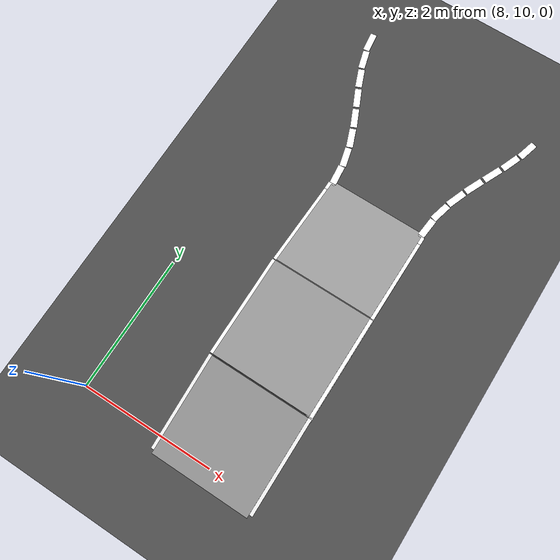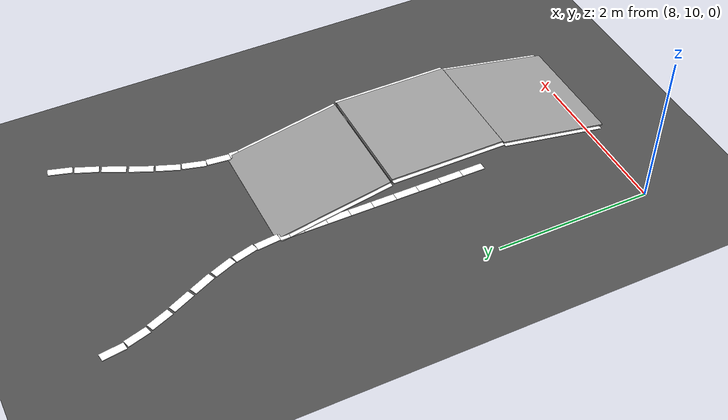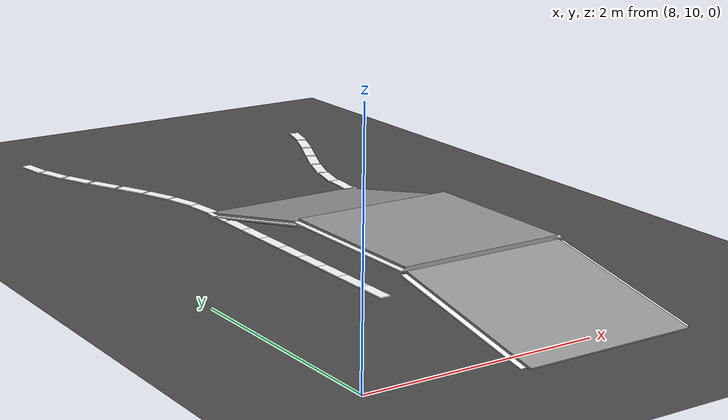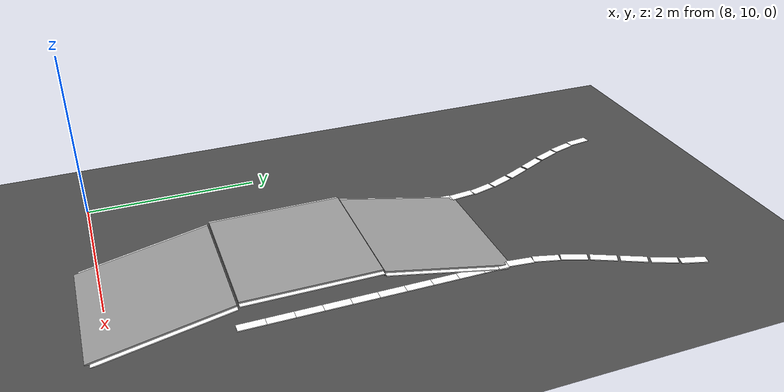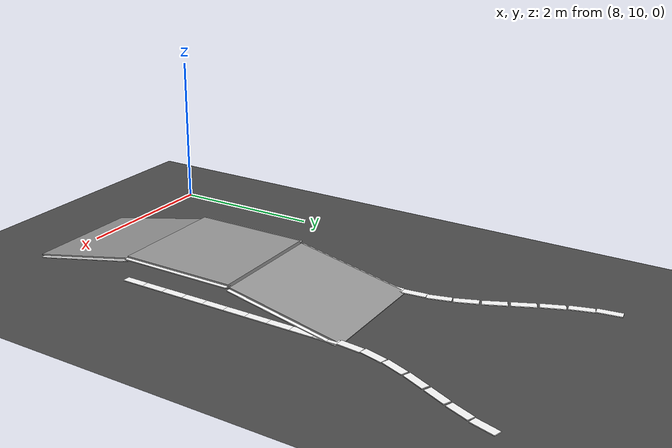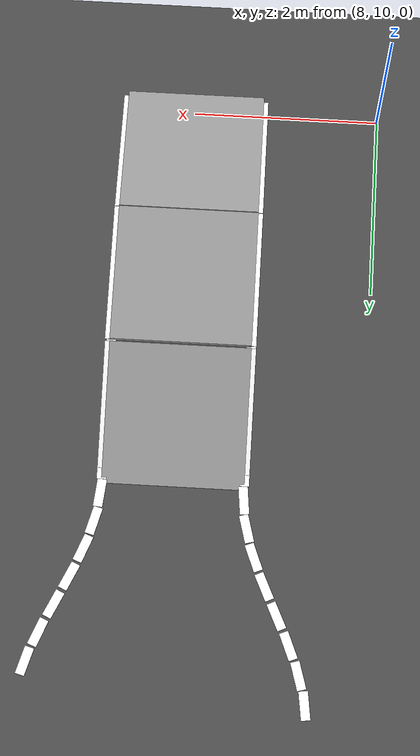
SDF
<sdf version="1.10">
 <world name="igvc_autonav">
  <model name="ground_plane">
   <static>true</static>
   <link name="link">
    <collision name="collision">
     <geometry><plane><normal>0 0 1</normal><size>60 60</size></plane></geometry>
     <surface><friction><ode><mu>0.80000000000000004</mu><mu2>0.80000000000000004</mu2></ode></friction></surface>
    </collision>
    <visual name="visual">
     <geometry><plane><normal>0 0 1</normal><size>60 60</size></plane></geometry>
     <material>
      <ambient>0.25 0.25 0.25 1</ambient>
      <diffuse>0.300000012 0.300000012 0.300000012 1</diffuse>
      <specular>0.100000001 0.100000001 0.100000001 1</specular>
     </material>
    </visual>
    <inertial>
     <mass>1</mass>
     <inertia><ixx>1</ixx><ixy>0</ixy><ixz>0</ixz><iyy>1</iyy><iyz>0</iyz><izz>1</izz></inertia>
    </inertial>
   </link>
  </model>
  <model name="lane_inner_49">
   <static>true</static>
   <pose>9.25 11.65 0.01 0 0 1.5708</pose>
   <link name="link">
    <visual name="visual">
     <geometry><box><size>0.29999999999999999 0.10000000000000001 0.01</size></box></geometry>
     <material><ambient>1 1 1 1</ambient><diffuse>1 1 1 1</diffuse><emissive>1 1 1 1</emissive></material>
    </visual>
    <inertial>
     <mass>1</mass>
     <inertia><ixx>1</ixx><ixy>0</ixy><ixz>0</ixz><iyy>1</iyy><iyz>0</iyz><izz>1</izz></inertia>
    </inertial>
   </link>
  </model>
  <model name="lane_inner_50">
   <static>true</static>
   <pose>9.25 11.949999999999999 0.01 0 0 1.5708</pose>
   <link name="link">
    <visual name="visual">
     <geometry><box><size>0.29999999999999999 0.10000000000000001 0.01</size></box></geometry>
     <material><ambient>1 1 1 1</ambient><diffuse>1 1 1 1</diffuse><emissive>1 1 1 1</emissive></material>
    </visual>
    <inertial>
     <mass>1</mass>
     <inertia><ixx>1</ixx><ixy>0</ixy><ixz>0</ixz><iyy>1</iyy><iyz>0</iyz><izz>1</izz></inertia>
    </inertial>
   </link>
  </model>
  <model name="lane_inner_51">
   <static>true</static>
   <pose>9.25 12.25 0.01 0 0 1.5708</pose>
   <link name="link">
    <visual name="visual">
     <geometry><box><size>0.29999999999999999 0.10000000000000001 0.01</size></box></geometry>
     <material><ambient>1 1 1 1</ambient><diffuse>1 1 1 1</diffuse><emissive>1 1 1 1</emissive></material>
    </visual>
    <inertial>
     <mass>1</mass>
     <inertia><ixx>1</ixx><ixy>0</ixy><ixz>0</ixz><iyy>1</iyy><iyz>0</iyz><izz>1</izz></inertia>
    </inertial>
   </link>
  </model>
  <model name="lane_inner_52">
   <static>true</static>
   <pose>9.25 12.550000000000001 0.01 0 0 1.5708</pose>
   <link name="link">
    <visual name="visual">
     <geometry><box><size>0.29999999999999999 0.10000000000000001 0.01</size></box></geometry>
     <material><ambient>1 1 1 1</ambient><diffuse>1 1 1 1</diffuse><emissive>1 1 1 1</emissive></material>
    </visual>
    <inertial>
     <mass>1</mass>
     <inertia><ixx>1</ixx><ixy>0</ixy><ixz>0</ixz><iyy>1</iyy><iyz>0</iyz><izz>1</izz></inertia>
    </inertial>
   </link>
  </model>
  <model name="lane_inner_53">
   <static>true</static>
   <pose>9.25 12.85 0.01 0 0 1.5708</pose>
   <link name="link">
    <visual name="visual">
     <geometry><box><size>0.29999999999999999 0.10000000000000001 0.01</size></box></geometry>
     <material><ambient>1 1 1 1</ambient><diffuse>1 1 1 1</diffuse><emissive>1 1 1 1</emissive></material>
    </visual>
    <inertial>
     <mass>1</mass>
     <inertia><ixx>1</ixx><ixy>0</ixy><ixz>0</ixz><iyy>1</iyy><iyz>0</iyz><izz>1</izz></inertia>
    </inertial>
   </link>
  </model>
  <model name="lane_inner_54">
   <static>true</static>
   <pose>9.25 13.15 0.01 0 0 1.5708</pose>
   <link name="link">
    <visual name="visual">
     <geometry><box><size>0.29999999999999999 0.10000000000000001 0.01</size></box></geometry>
     <material><ambient>1 1 1 1</ambient><diffuse>1 1 1 1</diffuse><emissive>1 1 1 1</emissive></material>
    </visual>
    <inertial>
     <mass>1</mass>
     <inertia><ixx>1</ixx><ixy>0</ixy><ixz>0</ixz><iyy>1</iyy><iyz>0</iyz><izz>1</izz></inertia>
    </inertial>
   </link>
  </model>
  <model name="lane_inner_55">
   <static>true</static>
   <pose>9.25 13.449999999999999 0.01 0 0 1.5708</pose>
   <link name="link">
    <visual name="visual">
     <geometry><box><size>0.29999999999999999 0.10000000000000001 0.01</size></box></geometry>
     <material><ambient>1 1 1 1</ambient><diffuse>1 1 1 1</diffuse><emissive>1 1 1 1</emissive></material>
    </visual>
    <inertial>
     <mass>1</mass>
     <inertia><ixx>1</ixx><ixy>0</ixy><ixz>0</ixz><iyy>1</iyy><iyz>0</iyz><izz>1</izz></inertia>
    </inertial>
   </link>
  </model>
  <model name="lane_inner_56">
   <static>true</static>
   <pose>9.25 13.75 0.01 0 0 1.5708</pose>
   <link name="link">
    <visual name="visual">
     <geometry><box><size>0.29999999999999999 0.10000000000000001 0.01</size></box></geometry>
     <material><ambient>1 1 1 1</ambient><diffuse>1 1 1 1</diffuse><emissive>1 1 1 1</emissive></material>
    </visual>
    <inertial>
     <mass>1</mass>
     <inertia><ixx>1</ixx><ixy>0</ixy><ixz>0</ixz><iyy>1</iyy><iyz>0</iyz><izz>1</izz></inertia>
    </inertial>
   </link>
  </model>
  <model name="lane_inner_57">
   <static>true</static>
   <pose>9.25 14.050000000000001 0.01 0 0 1.5708</pose>
   <link name="link">
    <visual name="visual">
     <geometry><box><size>0.29999999999999999 0.10000000000000001 0.01</size></box></geometry>
     <material><ambient>1 1 1 1</ambient><diffuse>1 1 1 1</diffuse><emissive>1 1 1 1</emissive></material>
    </visual>
    <inertial>
     <mass>1</mass>
     <inertia><ixx>1</ixx><ixy>0</ixy><ixz>0</ixz><iyy>1</iyy><iyz>0</iyz><izz>1</izz></inertia>
    </inertial>
   </link>
  </model>
  <model name="lane_inner_58">
   <static>true</static>
   <pose>9.2469999999999999 14.35 0.01 0 0 1.6731</pose>
   <link name="link">
    <visual name="visual">
     <geometry><box><size>0.29999999999999999 0.10000000000000001 0.01</size></box></geometry>
     <material><ambient>1 1 1 1</ambient><diffuse>1 1 1 1</diffuse><emissive>1 1 1 1</emissive></material>
    </visual>
    <inertial>
     <mass>1</mass>
     <inertia><ixx>1</ixx><ixy>0</ixy><ixz>0</ixz><iyy>1</iyy><iyz>0</iyz><izz>1</izz></inertia>
    </inertial>
   </link>
  </model>
  <model name="lane_inner_59">
   <static>true</static>
   <pose>9.2035999999999998 14.65 0.01 0 0 1.8293999999999999</pose>
   <link name="link">
    <visual name="visual">
     <geometry><box><size>0.29999999999999999 0.10000000000000001 0.01</size></box></geometry>
     <material><ambient>1 1 1 1</ambient><diffuse>1 1 1 1</diffuse><emissive>1 1 1 1</emissive></material>
    </visual>
    <inertial>
     <mass>1</mass>
     <inertia><ixx>1</ixx><ixy>0</ixy><ixz>0</ixz><iyy>1</iyy><iyz>0</iyz><izz>1</izz></inertia>
    </inertial>
   </link>
  </model>
  <model name="lane_inner_60">
   <static>true</static>
   <pose>9.1140000000000008 14.949999999999999 0.01 0 0 1.9419000000000002</pose>
   <link name="link">
    <visual name="visual">
     <geometry><box><size>0.29999999999999999 0.10000000000000001 0.01</size></box></geometry>
     <material><ambient>1 1 1 1</ambient><diffuse>1 1 1 1</diffuse><emissive>1 1 1 1</emissive></material>
    </visual>
    <inertial>
     <mass>1</mass>
     <inertia><ixx>1</ixx><ixy>0</ixy><ixz>0</ixz><iyy>1</iyy><iyz>0</iyz><izz>1</izz></inertia>
    </inertial>
   </link>
  </model>
  <model name="lane_inner_61">
   <static>true</static>
   <pose>8.9908999999999999 15.25 0.01 0 0 2.0013000000000001</pose>
   <link name="link">
    <visual name="visual">
     <geometry><box><size>0.29999999999999999 0.10000000000000001 0.01</size></box></geometry>
     <material><ambient>1 1 1 1</ambient><diffuse>1 1 1 1</diffuse><emissive>1 1 1 1</emissive></material>
    </visual>
    <inertial>
     <mass>1</mass>
     <inertia><ixx>1</ixx><ixy>0</ixy><ixz>0</ixz><iyy>1</iyy><iyz>0</iyz><izz>1</izz></inertia>
    </inertial>
   </link>
  </model>
  <model name="lane_inner_62">
   <static>true</static>
   <pose>8.8514999999999997 15.550000000000001 0.01 0 0 2.0057999999999998</pose>
   <link name="link">
    <visual name="visual">
     <geometry><box><size>0.29999999999999999 0.10000000000000001 0.01</size></box></geometry>
     <material><ambient>1 1 1 1</ambient><diffuse>1 1 1 1</diffuse><emissive>1 1 1 1</emissive></material>
    </visual>
    <inertial>
     <mass>1</mass>
     <inertia><ixx>1</ixx><ixy>0</ixy><ixz>0</ixz><iyy>1</iyy><iyz>0</iyz><izz>1</izz></inertia>
    </inertial>
   </link>
  </model>
  <model name="lane_inner_63">
   <static>true</static>
   <pose>8.7152999999999992 15.85 0.01 0 0 1.9556</pose>
   <link name="link">
    <visual name="visual">
     <geometry><box><size>0.29999999999999999 0.10000000000000001 0.01</size></box></geometry>
     <material><ambient>1 1 1 1</ambient><diffuse>1 1 1 1</diffuse><emissive>1 1 1 1</emissive></material>
    </visual>
    <inertial>
     <mass>1</mass>
     <inertia><ixx>1</ixx><ixy>0</ixy><ixz>0</ixz><iyy>1</iyy><iyz>0</iyz><izz>1</izz></inertia>
    </inertial>
   </link>
  </model>
  <model name="lane_inner_64">
   <static>true</static>
   <pose>8.6015999999999995 16.149999999999999 0.01 0 0 1.8515999999999999</pose>
   <link name="link">
    <visual name="visual">
     <geometry><box><size>0.29999999999999999 0.10000000000000001 0.01</size></box></geometry>
     <material><ambient>1 1 1 1</ambient><diffuse>1 1 1 1</diffuse><emissive>1 1 1 1</emissive></material>
    </visual>
    <inertial>
     <mass>1</mass>
     <inertia><ixx>1</ixx><ixy>0</ixy><ixz>0</ixz><iyy>1</iyy><iyz>0</iyz><izz>1</izz></inertia>
    </inertial>
   </link>
  </model>
  <model name="lane_inner_65">
   <static>true</static>
   <pose>8.5263000000000009 16.449999999999999 0.01 0 0 1.7013</pose>
   <link name="link">
    <visual name="visual">
     <geometry><box><size>0.29999999999999999 0.10000000000000001 0.01</size></box></geometry>
     <material><ambient>1 1 1 1</ambient><diffuse>1 1 1 1</diffuse><emissive>1 1 1 1</emissive></material>
    </visual>
    <inertial>
     <mass>1</mass>
     <inertia><ixx>1</ixx><ixy>0</ixy><ixz>0</ixz><iyy>1</iyy><iyz>0</iyz><izz>1</izz></inertia>
    </inertial>
   </link>
  </model>
  <model name="lane_outer_59">
   <static>true</static>
   <pose>10.75 11.35 0.01 0 0 1.5708</pose>
   <link name="link">
    <visual name="visual">
     <geometry><box><size>0.29999999999999999 0.10000000000000001 0.01</size></box></geometry>
     <material><ambient>1 1 1 1</ambient><diffuse>1 1 1 1</diffuse><emissive>1 1 1 1</emissive></material>
    </visual>
    <inertial>
     <mass>1</mass>
     <inertia><ixx>1</ixx><ixy>0</ixy><ixz>0</ixz><iyy>1</iyy><iyz>0</iyz><izz>1</izz></inertia>
    </inertial>
   </link>
  </model>
  <model name="lane_outer_60">
   <static>true</static>
   <pose>10.75 11.65 0.01 0 0 1.5708</pose>
   <link name="link">
    <visual name="visual">
     <geometry><box><size>0.29999999999999999 0.10000000000000001 0.01</size></box></geometry>
     <material><ambient>1 1 1 1</ambient><diffuse>1 1 1 1</diffuse><emissive>1 1 1 1</emissive></material>
    </visual>
    <inertial>
     <mass>1</mass>
     <inertia><ixx>1</ixx><ixy>0</ixy><ixz>0</ixz><iyy>1</iyy><iyz>0</iyz><izz>1</izz></inertia>
    </inertial>
   </link>
  </model>
  <model name="lane_outer_61">
   <static>true</static>
   <pose>10.75 11.949999999999999 0.01 0 0 1.5708</pose>
   <link name="link">
    <visual name="visual">
     <geometry><box><size>0.29999999999999999 0.10000000000000001 0.01</size></box></geometry>
     <material><ambient>1 1 1 1</ambient><diffuse>1 1 1 1</diffuse><emissive>1 1 1 1</emissive></material>
    </visual>
    <inertial>
     <mass>1</mass>
     <inertia><ixx>1</ixx><ixy>0</ixy><ixz>0</ixz><iyy>1</iyy><iyz>0</iyz><izz>1</izz></inertia>
    </inertial>
   </link>
  </model>
  <model name="lane_outer_62">
   <static>true</static>
   <pose>10.75 12.25 0.01 0 0 1.5708</pose>
   <link name="link">
    <visual name="visual">
     <geometry><box><size>0.29999999999999999 0.10000000000000001 0.01</size></box></geometry>
     <material><ambient>1 1 1 1</ambient><diffuse>1 1 1 1</diffuse><emissive>1 1 1 1</emissive></material>
    </visual>
    <inertial>
     <mass>1</mass>
     <inertia><ixx>1</ixx><ixy>0</ixy><ixz>0</ixz><iyy>1</iyy><iyz>0</iyz><izz>1</izz></inertia>
    </inertial>
   </link>
  </model>
  <model name="lane_outer_63">
   <static>true</static>
   <pose>10.75 12.550000000000001 0.01 0 0 1.5708</pose>
   <link name="link">
    <visual name="visual">
     <geometry><box><size>0.29999999999999999 0.10000000000000001 0.01</size></box></geometry>
     <material><ambient>1 1 1 1</ambient><diffuse>1 1 1 1</diffuse><emissive>1 1 1 1</emissive></material>
    </visual>
    <inertial>
     <mass>1</mass>
     <inertia><ixx>1</ixx><ixy>0</ixy><ixz>0</ixz><iyy>1</iyy><iyz>0</iyz><izz>1</izz></inertia>
    </inertial>
   </link>
  </model>
  <model name="lane_outer_64">
   <static>true</static>
   <pose>10.75 12.85 0.01 0 0 1.5708</pose>
   <link name="link">
    <visual name="visual">
     <geometry><box><size>0.29999999999999999 0.10000000000000001 0.01</size></box></geometry>
     <material><ambient>1 1 1 1</ambient><diffuse>1 1 1 1</diffuse><emissive>1 1 1 1</emissive></material>
    </visual>
    <inertial>
     <mass>1</mass>
     <inertia><ixx>1</ixx><ixy>0</ixy><ixz>0</ixz><iyy>1</iyy><iyz>0</iyz><izz>1</izz></inertia>
    </inertial>
   </link>
  </model>
  <model name="lane_outer_65">
   <static>true</static>
   <pose>10.75 13.15 0.01 0 0 1.5708</pose>
   <link name="link">
    <visual name="visual">
     <geometry><box><size>0.29999999999999999 0.10000000000000001 0.01</size></box></geometry>
     <material><ambient>1 1 1 1</ambient><diffuse>1 1 1 1</diffuse><emissive>1 1 1 1</emissive></material>
    </visual>
    <inertial>
     <mass>1</mass>
     <inertia><ixx>1</ixx><ixy>0</ixy><ixz>0</ixz><iyy>1</iyy><iyz>0</iyz><izz>1</izz></inertia>
    </inertial>
   </link>
  </model>
  <model name="lane_outer_66">
   <static>true</static>
   <pose>10.75 13.449999999999999 0.01 0 0 1.5708</pose>
   <link name="link">
    <visual name="visual">
     <geometry><box><size>0.29999999999999999 0.10000000000000001 0.01</size></box></geometry>
     <material><ambient>1 1 1 1</ambient><diffuse>1 1 1 1</diffuse><emissive>1 1 1 1</emissive></material>
    </visual>
    <inertial>
     <mass>1</mass>
     <inertia><ixx>1</ixx><ixy>0</ixy><ixz>0</ixz><iyy>1</iyy><iyz>0</iyz><izz>1</izz></inertia>
    </inertial>
   </link>
  </model>
  <model name="lane_outer_67">
   <static>true</static>
   <pose>10.75 13.75 0.01 0 0 1.5708</pose>
   <link name="link">
    <visual name="visual">
     <geometry><box><size>0.29999999999999999 0.10000000000000001 0.01</size></box></geometry>
     <material><ambient>1 1 1 1</ambient><diffuse>1 1 1 1</diffuse><emissive>1 1 1 1</emissive></material>
    </visual>
    <inertial>
     <mass>1</mass>
     <inertia><ixx>1</ixx><ixy>0</ixy><ixz>0</ixz><iyy>1</iyy><iyz>0</iyz><izz>1</izz></inertia>
    </inertial>
   </link>
  </model>
  <model name="lane_outer_68">
   <static>true</static>
   <pose>10.75 14.050000000000001 0.01 0 0 1.5708</pose>
   <link name="link">
    <visual name="visual">
     <geometry><box><size>0.29999999999999999 0.10000000000000001 0.01</size></box></geometry>
     <material><ambient>1 1 1 1</ambient><diffuse>1 1 1 1</diffuse><emissive>1 1 1 1</emissive></material>
    </visual>
    <inertial>
     <mass>1</mass>
     <inertia><ixx>1</ixx><ixy>0</ixy><ixz>0</ixz><iyy>1</iyy><iyz>0</iyz><izz>1</izz></inertia>
    </inertial>
   </link>
  </model>
  <model name="lane_outer_69">
   <static>true</static>
   <pose>10.753 14.35 0.01 0 0 1.4684999999999999</pose>
   <link name="link">
    <visual name="visual">
     <geometry><box><size>0.29999999999999999 0.10000000000000001 0.01</size></box></geometry>
     <material><ambient>1 1 1 1</ambient><diffuse>1 1 1 1</diffuse><emissive>1 1 1 1</emissive></material>
    </visual>
    <inertial>
     <mass>1</mass>
     <inertia><ixx>1</ixx><ixy>0</ixy><ixz>0</ixz><iyy>1</iyy><iyz>0</iyz><izz>1</izz></inertia>
    </inertial>
   </link>
  </model>
  <model name="lane_outer_70">
   <static>true</static>
   <pose>10.7964 14.65 0.01 0 0 1.3122</pose>
   <link name="link">
    <visual name="visual">
     <geometry><box><size>0.29999999999999999 0.10000000000000001 0.01</size></box></geometry>
     <material><ambient>1 1 1 1</ambient><diffuse>1 1 1 1</diffuse><emissive>1 1 1 1</emissive></material>
    </visual>
    <inertial>
     <mass>1</mass>
     <inertia><ixx>1</ixx><ixy>0</ixy><ixz>0</ixz><iyy>1</iyy><iyz>0</iyz><izz>1</izz></inertia>
    </inertial>
   </link>
  </model>
  <model name="lane_outer_71">
   <static>true</static>
   <pose>10.885999999999999 14.949999999999999 0.01 0 0 1.1997</pose>
   <link name="link">
    <visual name="visual">
     <geometry><box><size>0.29999999999999999 0.10000000000000001 0.01</size></box></geometry>
     <material><ambient>1 1 1 1</ambient><diffuse>1 1 1 1</diffuse><emissive>1 1 1 1</emissive></material>
    </visual>
    <inertial>
     <mass>1</mass>
     <inertia><ixx>1</ixx><ixy>0</ixy><ixz>0</ixz><iyy>1</iyy><iyz>0</iyz><izz>1</izz></inertia>
    </inertial>
   </link>
  </model>
  <model name="lane_outer_72">
   <static>true</static>
   <pose>11.0091 15.25 0.01 0 0 1.1403000000000001</pose>
   <link name="link">
    <visual name="visual">
     <geometry><box><size>0.29999999999999999 0.10000000000000001 0.01</size></box></geometry>
     <material><ambient>1 1 1 1</ambient><diffuse>1 1 1 1</diffuse><emissive>1 1 1 1</emissive></material>
    </visual>
    <inertial>
     <mass>1</mass>
     <inertia><ixx>1</ixx><ixy>0</ixy><ixz>0</ixz><iyy>1</iyy><iyz>0</iyz><izz>1</izz></inertia>
    </inertial>
   </link>
  </model>
  <model name="lane_outer_73">
   <static>true</static>
   <pose>11.1485 15.550000000000001 0.01 0 0 1.1356999999999999</pose>
   <link name="link">
    <visual name="visual">
     <geometry><box><size>0.29999999999999999 0.10000000000000001 0.01</size></box></geometry>
     <material><ambient>1 1 1 1</ambient><diffuse>1 1 1 1</diffuse><emissive>1 1 1 1</emissive></material>
    </visual>
    <inertial>
     <mass>1</mass>
     <inertia><ixx>1</ixx><ixy>0</ixy><ixz>0</ixz><iyy>1</iyy><iyz>0</iyz><izz>1</izz></inertia>
    </inertial>
   </link>
  </model>
  <model name="lane_outer_74">
   <static>true</static>
   <pose>11.284700000000001 15.85 0.01 0 0 1.1859999999999999</pose>
   <link name="link">
    <visual name="visual">
     <geometry><box><size>0.29999999999999999 0.10000000000000001 0.01</size></box></geometry>
     <material><ambient>1 1 1 1</ambient><diffuse>1 1 1 1</diffuse><emissive>1 1 1 1</emissive></material>
    </visual>
    <inertial>
     <mass>1</mass>
     <inertia><ixx>1</ixx><ixy>0</ixy><ixz>0</ixz><iyy>1</iyy><iyz>0</iyz><izz>1</izz></inertia>
    </inertial>
   </link>
  </model>
  <model name="lane_outer_75">
   <static>true</static>
   <pose>11.398400000000001 16.149999999999999 0.01 0 0 1.29</pose>
   <link name="link">
    <visual name="visual">
     <geometry><box><size>0.29999999999999999 0.10000000000000001 0.01</size></box></geometry>
     <material><ambient>1 1 1 1</ambient><diffuse>1 1 1 1</diffuse><emissive>1 1 1 1</emissive></material>
    </visual>
    <inertial>
     <mass>1</mass>
     <inertia><ixx>1</ixx><ixy>0</ixy><ixz>0</ixz><iyy>1</iyy><iyz>0</iyz><izz>1</izz></inertia>
    </inertial>
   </link>
  </model>
  <model name="ramp_1">
   <static>true</static>
   <link name="up_slope">
    <pose>-1.5 0 0.125 0 -0.1963 0</pose>
    <collision name="collision">
     <geometry><box><size>1.5 1.5 0.050000000000000003</size></box></geometry>
     <surface><friction><ode><mu>1</mu><mu2>1</mu2></ode></friction></surface>
    </collision>
    <visual name="visual">
     <geometry><box><size>1.5 1.5 0.050000000000000003</size></box></geometry>
     <material><ambient>0.5 0.5 0.5 1</ambient><diffuse>0.600000024 0.600000024 0.600000024 1</diffuse></material>
    </visual>
    <inertial>
     <mass>1</mass>
     <inertia><ixx>1</ixx><ixy>0</ixy><ixz>0</ixz><iyy>1</iyy><iyz>0</iyz><izz>1</izz></inertia>
    </inertial>
   </link>
   <link name="up_slope_lane_left">
    <pose>-1.5 0.75 0.125 -2.3466799999999994e-16 -0.1963 1.2502600000000003e-15</pose>
    <visual name="visual">
     <geometry><box><size>1.5 0.10000000000000001 0.01</size></box></geometry>
     <material><ambient>1 1 1 1</ambient><diffuse>1 1 1 1</diffuse><emissive>1 1 1 1</emissive></material>
    </visual>
    <inertial>
     <mass>1</mass>
     <inertia><ixx>1</ixx><ixy>0</ixy><ixz>0</ixz><iyy>1</iyy><iyz>0</iyz><izz>1</izz></inertia>
    </inertial>
   </link>
   <link name="up_slope_lane_right">
    <pose>-1.5 -0.75 0.125 -2.3466799999999994e-16 -0.1963 1.2502600000000003e-15</pose>
    <visual name="visual">
     <geometry><box><size>1.5 0.10000000000000001 0.01</size></box></geometry>
     <material><ambient>1 1 1 1</ambient><diffuse>1 1 1 1</diffuse><emissive>1 1 1 1</emissive></material>
    </visual>
    <inertial>
     <mass>1</mass>
     <inertia><ixx>1</ixx><ixy>0</ixy><ixz>0</ixz><iyy>1</iyy><iyz>0</iyz><izz>1</izz></inertia>
    </inertial>
   </link>
   <link name="flat_top">
    <pose>1.06581e-14 -1.06581e-14 0.29999999999999999 -6.5036699999999995e-17 9.2299699999999996e-17 7.7715600000000002e-16</pose>
    <collision name="collision">
     <geometry><box><size>1.5 1.5 0.050000000000000003</size></box></geometry>
     <surface><friction><ode><mu>1</mu><mu2>1</mu2></ode></friction></surface>
    </collision>
    <visual name="visual">
     <geometry><box><size>1.5 1.5 0.050000000000000003</size></box></geometry>
     <material><ambient>0.5 0.5 0.5 1</ambient><diffuse>0.600000024 0.600000024 0.600000024 1</diffuse></material>
    </visual>
    <inertial>
     <mass>1</mass>
     <inertia><ixx>1</ixx><ixy>0</ixy><ixz>0</ixz><iyy>1</iyy><iyz>0</iyz><izz>1</izz></inertia>
    </inertial>
   </link>
   <link name="flat_top_lane_left">
    <pose>1.24345e-14 0.75 0.29999999999999999 -6.5036699999999995e-17 9.2299699999999996e-17 7.7715600000000002e-16</pose>
    <visual name="visual">
     <geometry><box><size>1.5 0.10000000000000001 0.01</size></box></geometry>
     <material><ambient>1 1 1 1</ambient><diffuse>1 1 1 1</diffuse><emissive>1 1 1 1</emissive></material>
    </visual>
    <inertial>
     <mass>1</mass>
     <inertia><ixx>1</ixx><ixy>0</ixy><ixz>0</ixz><iyy>1</iyy><iyz>0</iyz><izz>1</izz></inertia>
    </inertial>
   </link>
   <link name="flat_top_lane_right">
    <pose>1.24345e-14 -0.75 0.29999999999999999 -6.5036699999999995e-17 9.2299699999999996e-17 7.7715600000000002e-16</pose>
    <visual name="visual">
     <geometry><box><size>1.5 0.10000000000000001 0.01</size></box></geometry>
     <material><ambient>1 1 1 1</ambient><diffuse>1 1 1 1</diffuse><emissive>1 1 1 1</emissive></material>
    </visual>
    <inertial>
     <mass>1</mass>
     <inertia><ixx>1</ixx><ixy>0</ixy><ixz>0</ixz><iyy>1</iyy><iyz>0</iyz><izz>1</izz></inertia>
    </inertial>
   </link>
   <link name="down_slope">
    <pose>1.5 -8.8817800000000005e-15 0.125 4.56309e-17 0.1963 1.4547600000000004e-15</pose>
    <collision name="collision">
     <geometry><box><size>1.5 1.5 0.050000000000000003</size></box></geometry>
     <surface><friction><ode><mu>1</mu><mu2>1</mu2></ode></friction></surface>
    </collision>
    <visual name="visual">
     <geometry><box><size>1.5 1.5 0.050000000000000003</size></box></geometry>
     <material><ambient>0.5 0.5 0.5 1</ambient><diffuse>0.600000024 0.600000024 0.600000024 1</diffuse></material>
    </visual>
    <inertial>
     <mass>1</mass>
     <inertia><ixx>1</ixx><ixy>0</ixy><ixz>0</ixz><iyy>1</iyy><iyz>0</iyz><izz>1</izz></inertia>
    </inertial>
   </link>
   <link name="down_slope_lane_left">
    <pose>1.5 0.75 0.125 4.56309e-17 0.1963 1.4547600000000004e-15</pose>
    <visual name="visual">
     <geometry><box><size>1.5 0.10000000000000001 0.01</size></box></geometry>
     <material><ambient>1 1 1 1</ambient><diffuse>1 1 1 1</diffuse><emissive>1 1 1 1</emissive></material>
    </visual>
    <inertial>
     <mass>1</mass>
     <inertia><ixx>1</ixx><ixy>0</ixy><ixz>0</ixz><iyy>1</iyy><iyz>0</iyz><izz>1</izz></inertia>
    </inertial>
   </link>
   <link name="down_slope_lane_right">
    <pose>1.5 -0.75 0.125 4.56309e-17 0.1963 1.4547600000000004e-15</pose>
    <visual name="visual">
     <geometry><box><size>1.5 0.10000000000000001 0.01</size></box></geometry>
     <material><ambient>1 1 1 1</ambient><diffuse>1 1 1 1</diffuse><emissive>1 1 1 1</emissive></material>
    </visual>
    <inertial>
     <mass>1</mass>
     <inertia><ixx>1</ixx><ixy>0</ixy><ixz>0</ixz><iyy>1</iyy><iyz>0</iyz><izz>1</izz></inertia>
    </inertial>
   </link>
   <pose>10 12 -1.80411e-16 -1.5700899999999999e-16 -1.1775700000000001e-16 1.5708</pose>
  </model>
 </world>
</sdf>
